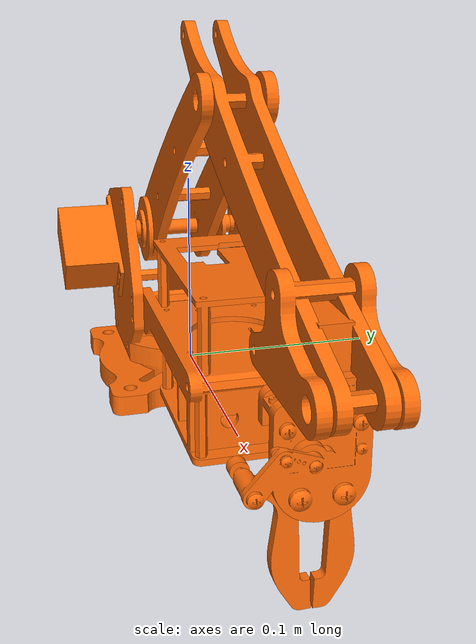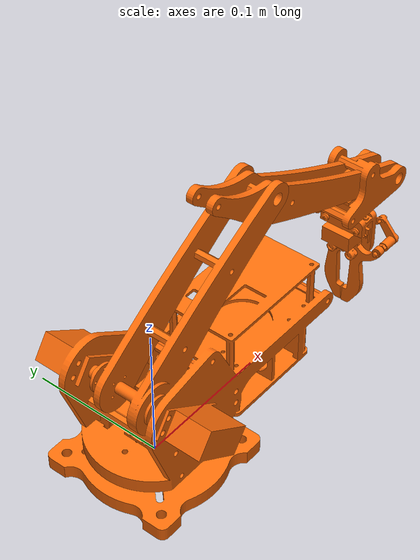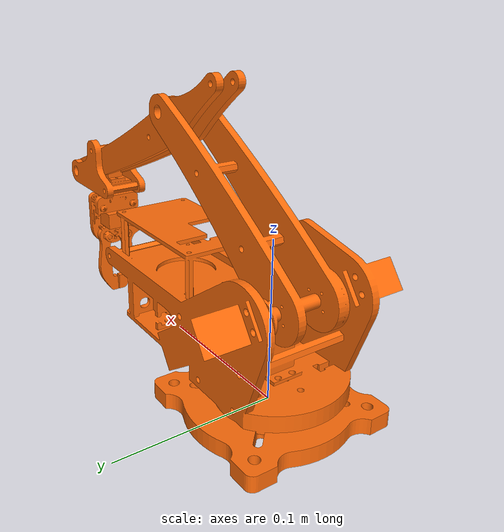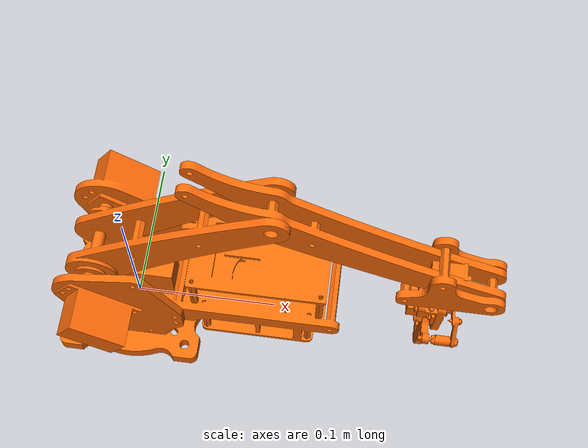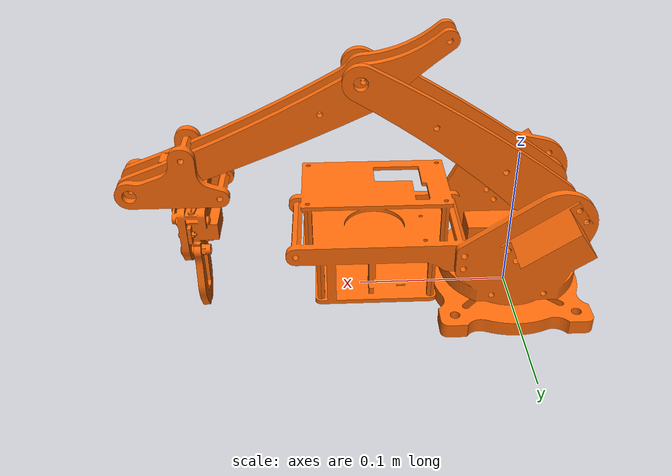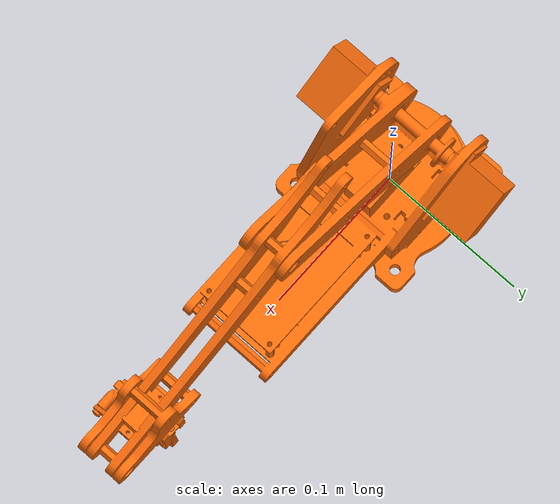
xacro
<?xml version="1.0"?>

 <!-- uArm description -->
  <robot name="uarm" params="3.14 *3.14">
    <link name="uarm_base_link">
      <visual>
        <origin xyz="0 0 0" rpy="0 0 0" />
        <geometry>
            <mesh filename="package://uarm_description/meshes/uarm_base.stl" scale="0.001 0.001 0.001"/>
        </geometry>
         <material name="white">
    <color rgba="${255/255} ${108/255} ${10/255} 1.0"/>
  </material>
      </visual>
    </link>
    <joint name="base_body_j" type="continuous">
      <origin xyz="0 0 0" rpy="0 ${-3.14/2} 0"/>
      <parent link="uarm_base_link"/>
      <child link="uarm_body_link"/>
    </joint>
    <link name="uarm_body_link">
      <visual>
        <origin xyz="0 0 0" rpy="0 ${3.14/2} 0" />
        <geometry>
            <mesh filename="package://uarm_description/meshes/uarm_body.stl" scale="0.001 0.001 0.001"/>
        </geometry>

 <material name="orange">
    <color rgba="${255/255} ${108/255} ${10/255} 1.0"/>
  </material>
      </visual>
    </link>

    <joint name="body_upper_arm_j" type="continuous">
      <origin xyz="0.069 0 0.021" rpy="-${3.14/2+0.624} 0 ${-3.14/2}"/>
      <parent link="uarm_body_link"/>
      <child link="uarm_upper_arm_link"/>
    </joint>

    <link name="uarm_upper_arm_link">
      <visual>
        <origin xyz="0 0 ${0}" rpy="0 0 ${3.14/2}" />
        <geometry>
            <mesh filename="package://uarm_description/meshes/uarm_upper_arm.stl" scale="0.001 0.001 0.001"/>
        </geometry>
        <material name="orange">
    <color rgba="${255/255} ${108/255} ${10/255} 1.0"/>
  </material>
      </visual>
    </link>

    <joint name="upper_arm_forearm_j" type="continuous">
      <origin xyz="0 0.048 0.138 " rpy="${2.87} 0 0"/>
      <parent link="uarm_upper_arm_link"/>
      <child link="uarm_forearm_link"/>
    </joint>

   <link name="uarm_forearm_link">
      <visual>
        <origin xyz="0 0 0" rpy="0 0 ${3.14/2}" />
        <geometry>
            <mesh filename="package://uarm_description/meshes/uarm_forearm.stl" scale="0.001 0.001 0.001"/>
        </geometry>
        <material name="orange">
    <color rgba="${255/255} ${108/255} ${10/255} 1.0"/>
  </material>
      </visual>
    </link>

    <joint name="forearm_wrist_j" type="continuous">
      <origin xyz="0 -0.145 -0.068" rpy="${0.624-2.87} 0 0"/>
      <parent link="uarm_forearm_link"/>
      <child link="uarm_wrist_link"/>
    </joint>

    <link name="uarm_wrist_link">
      <visual>
        <origin xyz="0 0 0" rpy="0 0 ${3.14/2}" />
        <geometry>
            <mesh filename="package://uarm_description/meshes/uarm_wrist.stl" scale="0.001 0.001 0.001"/>
        </geometry>
        <material name="orange">
    <color rgba="${255/255} ${108/255} ${10/255} 1.0"/>
  </material>
      </visual>
    </link>

    <joint name="wrist_palm_j" type="continuous">
      <origin xyz="0.0022 -0.036 -0.011" rpy=" ${-3.14/2} ${3.14/2} 0"/>
      <parent link="uarm_wrist_link"/>
      <child link="uarm_palm_link"/>
    </joint>

    <link name="uarm_palm_link">
      <visual>
        <origin xyz="0 0 0" rpy="${-3.14/2} 0 ${3.14/2}" />
        <geometry>
            <mesh filename="package://uarm_description/meshes/uarm_palm.stl" scale="0.001 0.001 0.001"/>
        </geometry>
         <material name="orange">
    <color rgba="${255/255} ${108/255} ${10/255} 1.0"/>
  </material>
      </visual>
    </link>

    <joint name="palm_left_finger_j" type="continuous">
      <origin xyz="0.035 -0.008 0 " rpy="0 ${3.14/2} 0"/>
      <parent link="uarm_palm_link"/>
      <child link="uarm_left_finger_link"/>
    </joint>

    <link name="uarm_left_finger_link">
      <visual>
        <origin xyz="0 0 0" rpy="${-3*3.14/2} 0 ${3.14/2}" />
        <geometry>
            <mesh filename="package://uarm_description/meshes/uarm_left_finger.stl" scale="0.001 0.001 0.001"/>
        </geometry>
        <material name="orange">
    <color rgba="${255/255} ${108/255} ${10/255} 1.0"/>
  </material>
      </visual>
    </link>

    <joint name="palm_right_finger_j" type="continuous">
      <origin xyz="0.035 0.008 0" rpy="0 ${3.14/2} 0"/>
      <parent link="uarm_palm_link"/>
      <child link="uarm_right_finger_link"/>
    </joint>

    <link name="uarm_right_finger_link">
      <visual>
        <origin xyz="0 0 0" rpy="${3.14/2} 0 ${3.14/2}" />
        <geometry>
            <mesh filename="package://uarm_description/meshes/uarm_right_finger.stl" scale="0.001 0.001 0.001"/>
        </geometry>
         <material name="orange">
    <color rgba="${255/255} ${108/255} ${10/255} 1.0"/>
  </material>
      </visual>
    </link>

</robot>
